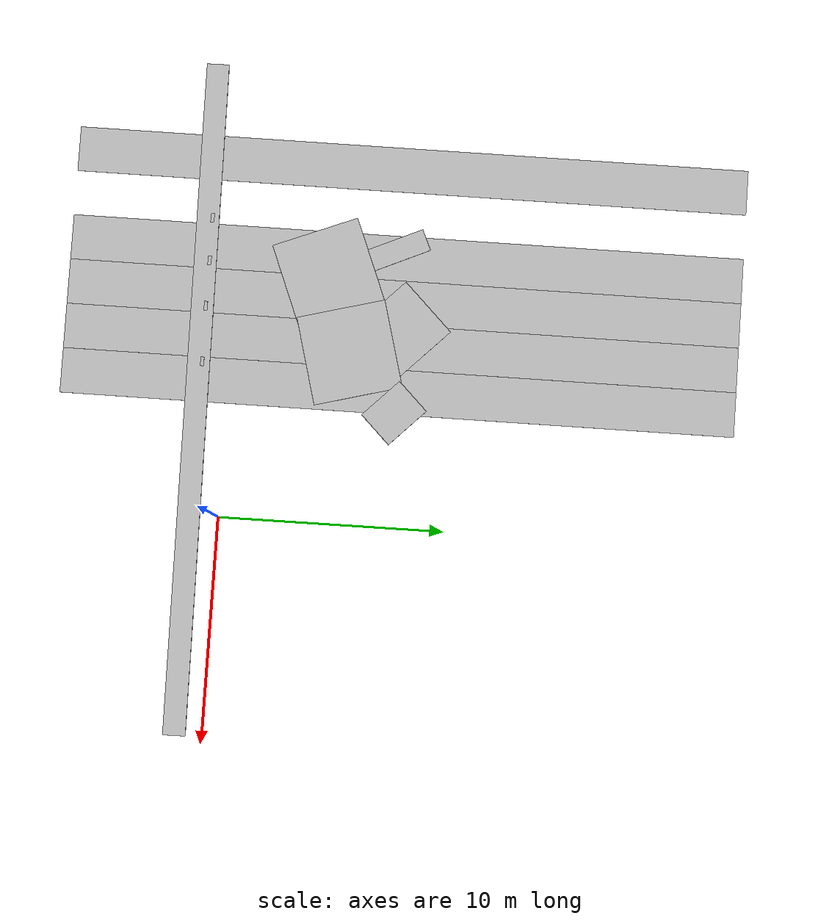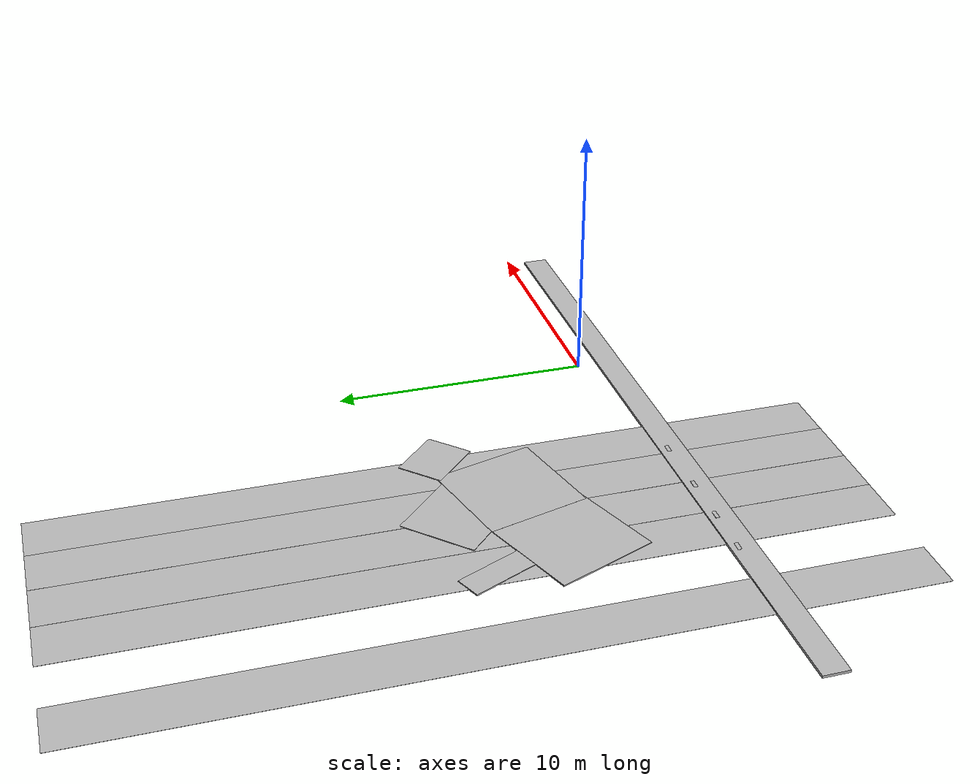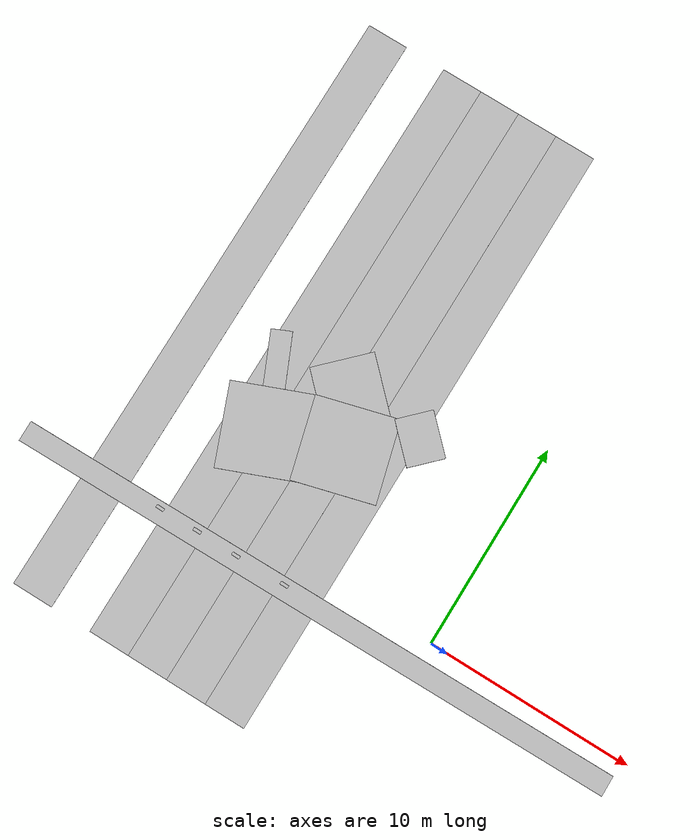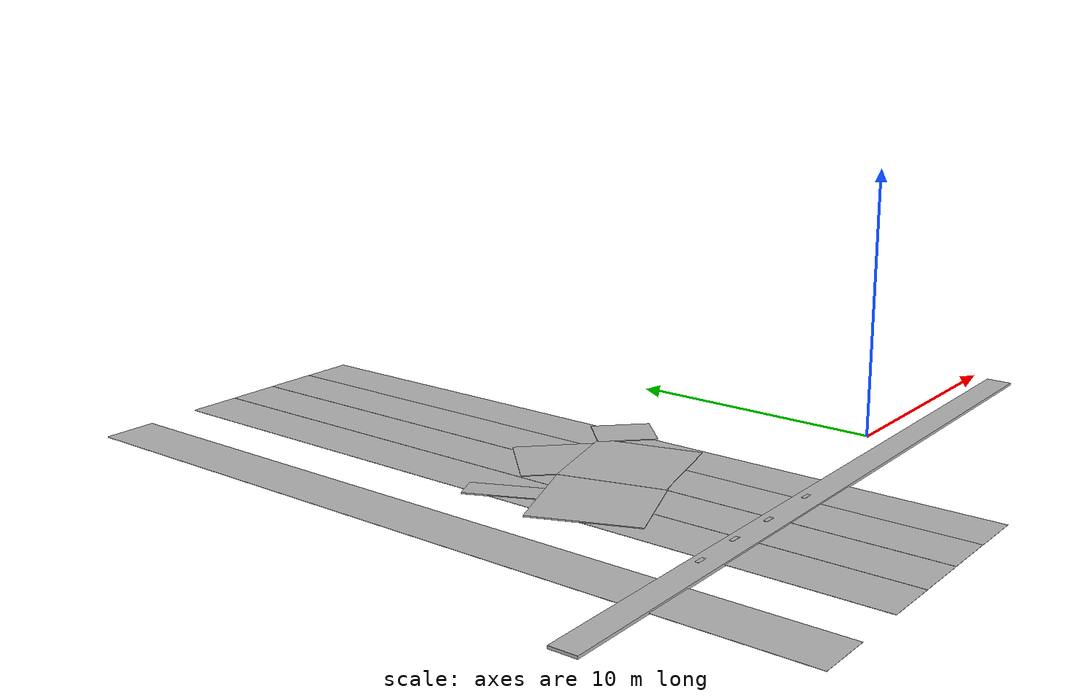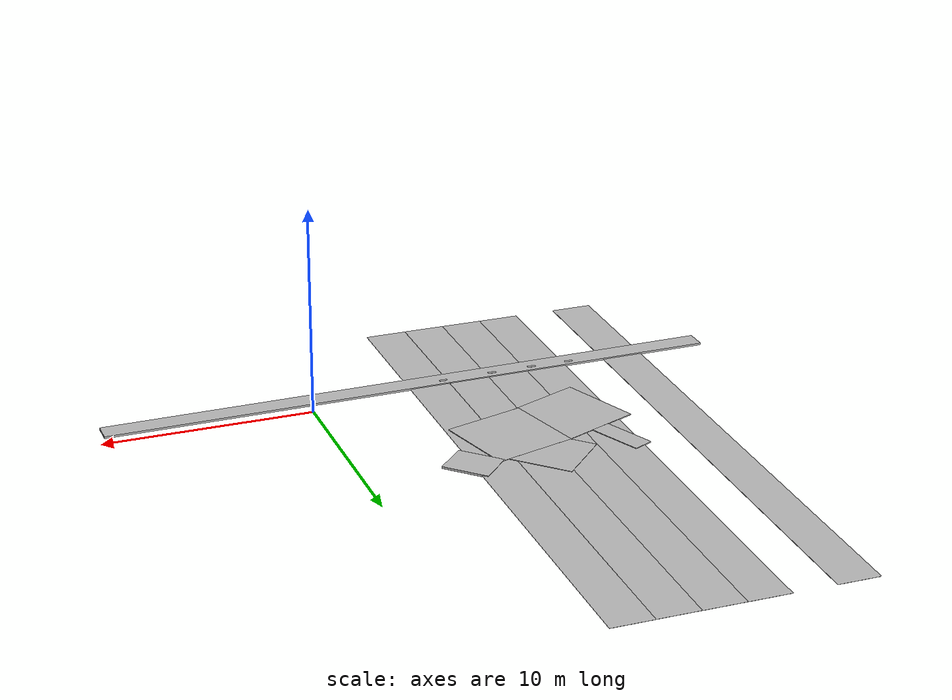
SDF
<sdf version="1.6">
 <world name="default">
  <model name="left_curve_r150_a60_020">
   <static>1</static>
   <link name="link">
    <collision name="collision">
     <geometry><box><size>3 3 0.05</size></box></geometry>
     <surface><friction><ode><mu>100</mu><mu2>50</mu2></ode></friction></surface>
    </collision>
    <visual name="visual">
     <cast_shadows>0</cast_shadows>
     <geometry><box><size>3 3 0.05</size></box></geometry>
     <material>
      <script>
       <uri>model://left_curve_r150_a60_020/materials/scripts</uri>
       <uri>model://left_curve_r150_a60_020/materials/textures/</uri>
       <name>left_curve_r150_a60_020/Image</name>
      </script>
     </material>
    </visual>
   </link>
   <pose>-8.89192 7.61762 0.001 0 0 -0.779843</pose>
  </model>
  <model name="right_curve_r200_a90_o20">
   <static>1</static>
   <link name="link">
    <collision name="collision">
     <geometry><box><size>4 4 0.05</size></box></geometry>
     <surface><friction><ode><mu>100</mu><mu2>50</mu2></ode></friction></surface>
    </collision>
    <visual name="visual">
     <cast_shadows>0</cast_shadows>
     <geometry><box><size>4 4 0.05</size></box></geometry>
     <material>
      <script>
       <uri>model://right_curve_r200_a90_o20/materials/scripts</uri>
       <uri>model://right_curve_r200_a90_o20/materials/textures/</uri>
       <name>right_curve_r200_a90_o20/Image</name>
      </script>
     </material>
    </visual>
   </link>
   <pose>-7.6945 5.3036 0.002 0 -0 1.83523</pose>
  </model>
  <model name="right_curve_r200_a90_o20_0">
   <static>1</static>
   <link name="link">
    <collision name="collision">
     <geometry><box><size>4 4 0.05</size></box></geometry>
     <surface><friction><ode><mu>100</mu><mu2>50</mu2></ode></friction></surface>
    </collision>
    <visual name="visual">
     <cast_shadows>0</cast_shadows>
     <geometry><box><size>4 4 0.05</size></box></geometry>
     <material>
      <script>
       <uri>model://right_curve_r200_a90_o20/materials/scripts</uri>
       <uri>model://right_curve_r200_a90_o20/materials/textures/</uri>
       <name>right_curve_r200_a90_o20/Image</name>
      </script>
     </material>
    </visual>
   </link>
   <pose>-11.1447 4.13942 0.001 0 -0 0.381381</pose>
  </model>
  <model name="straight_300_o_25_2">
   <static>1</static>
   <link name="link">
    <collision name="collision">
     <geometry><box><size>3 1 0.05</size></box></geometry>
     <surface><friction><ode><mu>100</mu><mu2>50</mu2></ode></friction></surface>
    </collision>
    <visual name="visual">
     <cast_shadows>0</cast_shadows>
     <geometry><box><size>3 1 0.05</size></box></geometry>
     <material>
      <script>
       <uri>model://straight_300_o_25/materials/scripts</uri>
       <uri>model://straight_300_o_25/materials/textures/</uri>
       <name>straight_300_o_25/Image</name>
      </script>
     </material>
    </visual>
   </link>
   <pose>-12.3535 7.02768 -0.001 0 -0 1.99398</pose>
  </model>
  <model name="black_tile_w200_h3000_3">
   <static>1</static>
   <link name="link">
    <collision name="collision">
     <geometry><box><size>2 30 0.01</size></box></geometry>
     <surface><friction><ode><mu>100</mu><mu2>50</mu2></ode></friction></surface>
    </collision>
    <visual name="visual">
     <cast_shadows>0</cast_shadows>
     <geometry><box><size>2 30 0.01</size></box></geometry>
     <material>
      <script>
       <uri>model://black_tile_w200_h3000/materials/scripts</uri>
       <uri>model://black_tile_w200_h3000/materials/textures/</uri>
       <name>black_tile_w200_h3000/Image</name>
      </script>
     </material>
    </visual>
   </link>
   <pose>-6.05699 7.57177 -0.006667 0 -0 0</pose>
  </model>
  <model name="black_tile_w200_h3000_4">
   <static>1</static>
   <link name="link">
    <collision name="collision">
     <geometry><box><size>2 30 0.01</size></box></geometry>
     <surface><friction><ode><mu>100</mu><mu2>50</mu2></ode></friction></surface>
    </collision>
    <visual name="visual">
     <cast_shadows>0</cast_shadows>
     <geometry><box><size>2 30 0.01</size></box></geometry>
     <material>
      <script>
       <uri>model://black_tile_w200_h3000/materials/scripts</uri>
       <uri>model://black_tile_w200_h3000/materials/textures/</uri>
       <name>black_tile_w200_h3000/Image</name>
      </script>
     </material>
    </visual>
   </link>
   <pose>-8.05699 7.57177 -0.003333 0 -0 0</pose>
  </model>
  <model name="black_tile_w200_h3000_5">
   <static>1</static>
   <link name="link">
    <collision name="collision">
     <geometry><box><size>2 30 0.01</size></box></geometry>
     <surface><friction><ode><mu>100</mu><mu2>50</mu2></ode></friction></surface>
    </collision>
    <visual name="visual">
     <cast_shadows>0</cast_shadows>
     <geometry><box><size>2 30 0.01</size></box></geometry>
     <material>
      <script>
       <uri>model://black_tile_w200_h3000/materials/scripts</uri>
       <uri>model://black_tile_w200_h3000/materials/textures/</uri>
       <name>black_tile_w200_h3000/Image</name>
      </script>
     </material>
    </visual>
   </link>
   <pose>-10.057 7.57177 -0.006667 0 -0 0</pose>
  </model>
  <model name="black_tile_w200_h3000_6">
   <static>1</static>
   <link name="link">
    <collision name="collision">
     <geometry><box><size>2 30 0.01</size></box></geometry>
     <surface><friction><ode><mu>100</mu><mu2>50</mu2></ode></friction></surface>
    </collision>
    <visual name="visual">
     <cast_shadows>0</cast_shadows>
     <geometry><box><size>2 30 0.01</size></box></geometry>
     <material>
      <script>
       <uri>model://black_tile_w200_h3000/materials/scripts</uri>
       <uri>model://black_tile_w200_h3000/materials/textures/</uri>
       <name>black_tile_w200_h3000/Image</name>
      </script>
     </material>
    </visual>
   </link>
   <pose>-12.057 7.57177 -0.01 0 -0 0</pose>
  </model>
  <model name="black_tile_w200_h3000_8">
   <static>1</static>
   <link name="link">
    <collision name="collision">
     <geometry><box><size>2 30 0.01</size></box></geometry>
     <surface><friction><ode><mu>100</mu><mu2>50</mu2></ode></friction></surface>
    </collision>
    <visual name="visual">
     <cast_shadows>0</cast_shadows>
     <geometry><box><size>2 30 0.01</size></box></geometry>
     <material>
      <script>
       <uri>model://black_tile_w200_h3000/materials/scripts</uri>
       <uri>model://black_tile_w200_h3000/materials/textures/</uri>
       <name>black_tile_w200_h3000/Image</name>
      </script>
     </material>
    </visual>
   </link>
   <pose>-16.057 7.57177 -0.016667 0 -0 0</pose>
  </model>
  <model name="island_no_crossing_gimp">
   <static>1</static>
   <link name="link">
    <collision name="collision">
     <geometry><box><size>2.25 1.8 0.1</size></box></geometry>
     <surface><friction><ode><mu>100</mu><mu2>50</mu2></ode></friction></surface>
    </collision>
    <visual name="visual">
     <cast_shadows>0</cast_shadows>
     <geometry><box><size>2.25 1.8 0.1</size></box></geometry>
     <material>
      <script>
       <uri>model://island_no_crossing_gimp/materials/scripts</uri>
       <uri>model://island_no_crossing_gimp/materials/textures/</uri>
       <name>island_no_crossing_gimp/Image</name>
      </script>
     </material>
    </visual>
   </link>
   <pose>-5.11971 7.4661 -0.02145 0 0 -0.778963</pose>
  </model>
  <model name="straight_3000_o_0">
   <static>1</static>
   <link name="link">
    <collision name="collision">
     <geometry><box><size>30 1 0.1</size></box></geometry>
     <surface><friction><ode><mu>100</mu><mu2>50</mu2></ode></friction></surface>
    </collision>
    <visual name="visual">
     <cast_shadows>0</cast_shadows>
     <geometry><box><size>30 1 0.1</size></box></geometry>
     <material>
      <script>
       <uri>model://straight_3000_o_0/materials/scripts</uri>
       <uri>model://straight_3000_o_0/materials/textures/</uri>
       <name>straight_3000_o_0/Image</name>
      </script>
     </material>
    </visual>
   </link>
   <pose>-5.30298 -1.35092 0 0 -0 0.009586</pose>
  </model>
  <model name="speed_limit_60_ground">
   <static>1</static>
   <link name="link">
    <collision name="collision">
     <geometry><box><size>0.4 0.15 0.01</size></box></geometry>
     <surface><friction><ode><mu>100</mu><mu2>50</mu2></ode></friction></surface>
    </collision>
    <visual name="visual">
     <cast_shadows>0</cast_shadows>
     <geometry><box><size>0.4 0.15 0.01</size></box></geometry>
     <material>
      <script>
       <uri>model://speed_limit_60_ground/materials/scripts</uri>
       <uri>model://speed_limit_60_ground/materials/textures/</uri>
       <name>speed_limit_60_ground/Image</name>
      </script>
     </material>
    </visual>
   </link>
   <pose>-6.84905 -1.20471 0.048908 0 -0 3.12156</pose>
  </model>
  <model name="speed_limit_70_ground">
   <static>1</static>
   <link name="link">
    <collision name="collision">
     <geometry><box><size>0.4 0.15 0.01</size></box></geometry>
     <surface><friction><ode><mu>100</mu><mu2>50</mu2></ode></friction></surface>
    </collision>
    <visual name="visual">
     <cast_shadows>0</cast_shadows>
     <geometry><box><size>0.4 0.15 0.01</size></box></geometry>
     <material>
      <script>
       <uri>model://speed_limit_70_ground/materials/scripts</uri>
       <uri>model://speed_limit_70_ground/materials/textures/</uri>
       <name>speed_limit_70_ground/Image</name>
      </script>
     </material>
    </visual>
   </link>
   <pose>-9.35115 -1.23487 0.056535 0 -0 3.13125</pose>
  </model>
  <model name="speed_limit_80_ground">
   <static>1</static>
   <link name="link">
    <collision name="collision">
     <geometry><box><size>0.4 0.15 0.01</size></box></geometry>
     <surface><friction><ode><mu>100</mu><mu2>50</mu2></ode></friction></surface>
    </collision>
    <visual name="visual">
     <cast_shadows>0</cast_shadows>
     <geometry><box><size>0.4 0.15 0.01</size></box></geometry>
     <material>
      <script>
       <uri>model://speed_limit_80_ground/materials/scripts</uri>
       <uri>model://speed_limit_80_ground/materials/textures/</uri>
       <name>speed_limit_80_ground/Image</name>
      </script>
     </material>
    </visual>
   </link>
   <pose>-11.3837 -1.21648 0.073241 0 -0 3.1331</pose>
  </model>
  <model name="speed_limit_90_ground">
   <static>1</static>
   <link name="link">
    <collision name="collision">
     <geometry><box><size>0.4 0.15 0.01</size></box></geometry>
     <surface><friction><ode><mu>100</mu><mu2>50</mu2></ode></friction></surface>
    </collision>
    <visual name="visual">
     <cast_shadows>0</cast_shadows>
     <geometry><box><size>0.4 0.15 0.01</size></box></geometry>
     <material>
      <script>
       <uri>model://speed_limit_90_ground/materials/scripts</uri>
       <uri>model://speed_limit_90_ground/materials/textures/</uri>
       <name>speed_limit_90_ground/Image</name>
      </script>
     </material>
    </visual>
   </link>
   <pose>-13.3214 -1.22607 0.04839 0 -0 3.11024</pose>
  </model>
 </world>
</sdf>
